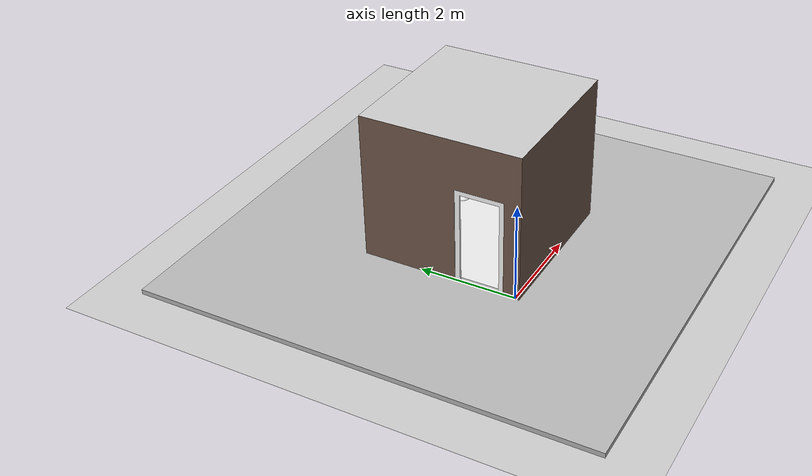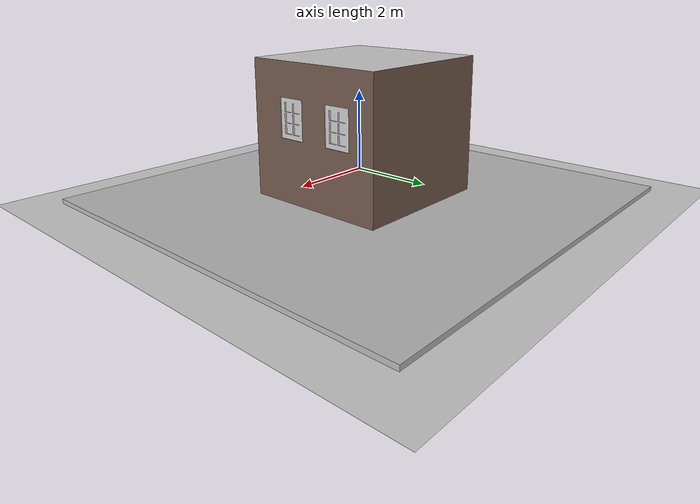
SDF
<?xml version="1.0"?>
<sdf version="1.7">
	<world name="default">
		<light name='sun' type='directional'>
      		<cast_shadows>1</cast_shadows>
      		<pose>0 0 20 0 -0 0</pose>
      		<diffuse>0.8 0.8 0.8 1</diffuse>
      		<specular>0.2 0.2 0.2 1</specular>
      		<attenuation>
       			<range>1000</range>
        		<constant>0.9</constant>
        		<linear>0.01</linear>
        		<quadratic>0.01</quadratic>
      		</attenuation>
      		<direction>0.109 0.109764 -0.987878</direction>
      		<spot>
        		<inner_angle>0</inner_angle>
        		<outer_angle>0</outer_angle>
       			<falloff>0</falloff>
      		</spot>
    	</light>
    	<light name='ceiling' type='point'>
      		<cast_shadows>1</cast_shadows>
      		<pose>1.5 1.5 3.0 0 -0 0</pose>
      		<diffuse>0.5 0.5 0.5 1</diffuse>
      		<specular>0.02 0.02 0.02 1</specular>
      		<attenuation>
       			<range>3.32</range>
        		<constant>0.5</constant>
        		<linear>0.01</linear>
        		<quadratic>0.00</quadratic>
      		</attenuation>
      		<spot>
        		<inner_angle>0</inner_angle>
        		<outer_angle>0</outer_angle>
       			<falloff>0</falloff>
      		</spot>
    	</light>
    	<model name='ground_plane'>
      		<static>1</static>
      		<link name='link'>
        		<collision name='collision'>
          			<geometry>
            			<plane>
            		  		<normal>0 0 1</normal>
            		  		<size>100 100</size>
            				</plane>
          			</geometry>
          			<surface>
            			<contact>
            			  <collide_bitmask>65535</collide_bitmask>
            			  <ode/>
            			</contact>
            			<friction>
            		  		<ode>
            		    		<mu>100</mu>
            		    		<mu2>50</mu2>
            		  		</ode>
            		  		<torsional>
            		    		<ode/>
            		  		</torsional>
            			</friction>
            			<bounce/>
          			</surface>
          			<max_contacts>10</max_contacts>
        		</collision>
        		<visual name='visual'>
          			<cast_shadows>0</cast_shadows>
          			<geometry>
            			<plane>
            	  		<normal>0 0 1</normal>
            	  		<size>100 100</size>
            			</plane>
          			</geometry>
          			<material>
            			<script>
            	  			<uri>file://media/materials/scripts/gazebo.material</uri>
            	  			<name>Gazebo/Grey</name>
            			</script>
          			</material>
        		</visual>
        		<self_collide>0</self_collide>
        		<enable_wind>0</enable_wind>
        		<kinematic>0</kinematic>
      		</link>
    	</model>
    	<gravity>0 0 -9.8</gravity>
    	<magnetic_field>6e-06 2.3e-05 -4.2e-05</magnetic_field>
    	<atmosphere type='adiabatic'/>
    	<physics type='ode'>
      		<max_step_size>0.001</max_step_size>
      		<real_time_factor>1</real_time_factor>
      		<real_time_update_rate>1000</real_time_update_rate>
    	</physics>
    	<scene>
    	  <ambient>0.4 0.4 0.4 1</ambient>
    	  <background>0.7 0.7 0.7 1</background>
    	  <shadows>1</shadows>
    	</scene>
    	<wind/>
    	<spherical_coordinates>
      		<surface_model>EARTH_WGS84</surface_model>
      		<latitude_deg>0</latitude_deg>
      		<longitude_deg>0</longitude_deg>
      		<elevation>0</elevation>
      		<heading_deg>0</heading_deg>
    	</spherical_coordinates>
		<model name="floor_exterior">
			<static>true</static>
			<link name="floor_exterior_link">
				<pose>1.570 1.570 0 0 0 0</pose>
				<inertial>
					<mass>16.2</mass>
					<inertia>
						<ixx>194.476917</ixx>
						<ixy>82.621125</ixy>
						<ixz>-0.076725</ixz>
						<iyy>194.476917</iyy>
						<iyz>0.076725</iyz>
						<izz>388.952750</izz>
						</inertia>
					</inertial>
				<collision name="floor_exterior_collision">
					<geometry>
						<mesh>
							<uri>model://meshes/floor_iisc_exterior.dae</uri>
						</mesh>
					</geometry>
				</collision>
				<visual name="floor_exterior_vis">
					<geometry>
						<mesh>
							<uri>model://meshes/floor_iisc_exterior.dae</uri>
						</mesh>
					</geometry>
				</visual>
			</link>
		</model>
		<model name="floor_interior">
			<static>true</static>
			<link name="floor_interior_link">
				<pose>0 0 0 0 0 0</pose>
				<inertial>
					<mass>2.439</mass>
					<inertia>
						<ixx>7.317081</ixx>
						<ixy>5.487750</ixy>
						<ixz>0.0189293</ixz>
						<iyy>7.317081</iyy>
						<iyz>0.0189293</iyz>
						<izz>14.6340</izz>
						</inertia>
					</inertial>
				<collision name="floor_interior_collision">
					<geometry>
						<mesh>
							<uri>model://meshes/floor_iisc_interior.dae</uri>
						</mesh>
					</geometry>
				</collision>
				<visual name="floor_interior_vis">
					<geometry>
						<mesh>
							<uri>model://meshes/floor_iisc_interior.dae</uri>
						</mesh>
					</geometry>
					<material>
						<script>
							<uri>model://materials/scripts/iisc_robotic_challenge_material.material</uri>
							<name>FloorInteriorWhiteChecksTexture</name>
						</script>
					</material>
				</visual>
			</link>
		</model>
		<model name="washroom">
			<static>true</static>
			<link name="washroom_link">
				<pose>-0.14 3.14 0.10 0 0 -1.570796327</pose>
				<collision name="washroom_collision">
					<geometry>
						<mesh>
							<uri>model://meshes/WashRoomWalls.dae</uri>
						</mesh>
					</geometry>
				</collision>
				<visual name="washroom_vis">
					<geometry>
						<mesh>
							<uri>model://meshes/WashRoomWalls.dae</uri>
						</mesh>
					</geometry>
				</visual>
			</link>
		</model>
		<model name="washroomDoor">
			<static>true</static>
			<link name="washroomDoor_link">
				<pose>-0.073 0.194 0.10 0 0 0</pose>
				<collision name="washroomDoor_collision">
					<geometry>
						<mesh>
							<uri>model://meshes/washRoomDoor.dae</uri>
						</mesh>
					</geometry>
				</collision>
				<visual name="washroomDoor_vis">
					<geometry>
						<mesh>
							<uri>model://meshes/washRoomDoor.dae</uri>
						</mesh>
					</geometry>
				</visual>
			</link>
		</model>
		<model name="washroomWindow1">
			<static>true</static>
			<link name="washroomWindow1_link">
				<pose>3.07 0.945 1.50 0 0 0</pose>
				<collision name="washroomWindow1_collision">
					<geometry>
						<mesh>
							<uri>model://meshes/washRoomWindow.dae</uri>
						</mesh>
					</geometry>
				</collision>
				<visual name="washroomWindow1_vis">
					<geometry>
						<mesh>
							<uri>model://meshes/washRoomWindow.dae</uri>
						</mesh>
					</geometry>
				</visual>
			</link>
		</model>
		<model name="washroomWindow2">
			<static>true</static>
			<link name="washroomWindow2_link">
				<pose>3.07 2.215 1.50 0 0 0</pose>
				<collision name="washroomWindow2_collision">
					<geometry>
						<mesh>
							<uri>model://meshes/washRoomWindow.dae</uri>
						</mesh>
					</geometry>
				</collision>
				<visual name="washroomWindow2_vis">
					<geometry>
						<mesh>
							<uri>model://meshes/washRoomWindow.dae</uri>
						</mesh>
					</geometry>
				</visual>
			</link>
		</model>
		<model name="washroomBasin">
			<static>true</static>
			<link name="washroomBasin_link">
				<pose>0.605 2.6974795 1.12 0 0 0</pose>
				<collision name="washroomBasin_collision">
					<geometry>
						<mesh>
							<uri>model://meshes/wash_base_sink.dae</uri>
						</mesh>
					</geometry>
				</collision>
				<visual name="washroomBasin_vis">
					<geometry>
						<mesh>
							<uri>model://meshes/wash_base_sink.dae</uri>
						</mesh>
					</geometry>
				</visual>
			</link>
		</model>
		<model name="washroomTap">
			<static>true</static>
			<link name="washroomTap_link">
				<pose>0.605 2.91 1.12 0 0 1.570796327</pose>
				<collision name="washroomTap_collision">
					<geometry>
						<mesh>
							<uri>model://meshes/tap.dae</uri>
						</mesh>
					</geometry>
				</collision>
				<visual name="washroomTap_vis">
					<geometry>
						<mesh>
							<uri>model://meshes/tap.dae</uri>
						</mesh>
					</geometry>
				</visual>
			</link>
		</model>
		<model name="washroomCommode">
			<static>true</static>
			<link name="washroomCommode_link">
				<pose>2.5 2.5 0.10 0 0 3.141592653</pose>
				<collision name="washroomCommode_collision">
					<geometry>
						<mesh>
							<uri>model://meshes/commode.dae</uri>
						</mesh>
					</geometry>
				</collision>
				<visual name="washroomCommode_vis">
					<geometry>
						<mesh>
							<uri>model://meshes/commode.dae</uri>
						</mesh>
					</geometry>
					<material>
						<script>
							<uri>model://materials/scripts/iisc_robotic_challenge_material.material</uri>
							<name>DullWhite</name>
						</script>
					</material>
				</visual>
			</link>
		</model>
		<model name="washroomMirror">
			<static>true</static>
			<link name="washroomMirror_link">
				<pose>0.375 2.985 1.40 0 0 0</pose>
				<collision name="washroomMirror_collision">
					<geometry>
						<mesh>
							<uri>model://meshes/WashRoomMirror.dae</uri>
						</mesh>
					</geometry>
				</collision>
				<visual name="washroomMirror_vis">
					<geometry>
						<mesh>
							<uri>model://meshes/WashRoomMirror.dae</uri>
						</mesh>
					</geometry>
				</visual>
			</link>
		</model>
		<model name="washroomDustbin">
			<static>true</static>
			<link name="washroomCommode_link">
				<pose>2.0 2.5 0.1 0 0 0</pose>
				<collision name="washroomDustbin_collision">
					<geometry>
						<mesh>
							<uri>model://meshes/WashRoomDustBin.dae</uri>
						</mesh>
					</geometry>
				</collision>
				<visual name="washroomDustbin_vis">
					<geometry>
						<mesh>
							<uri>model://meshes/WashRoomDustBin.dae</uri>
						</mesh>
					</geometry>
				</visual>
			</link>
		</model>
	</world>
</sdf>
